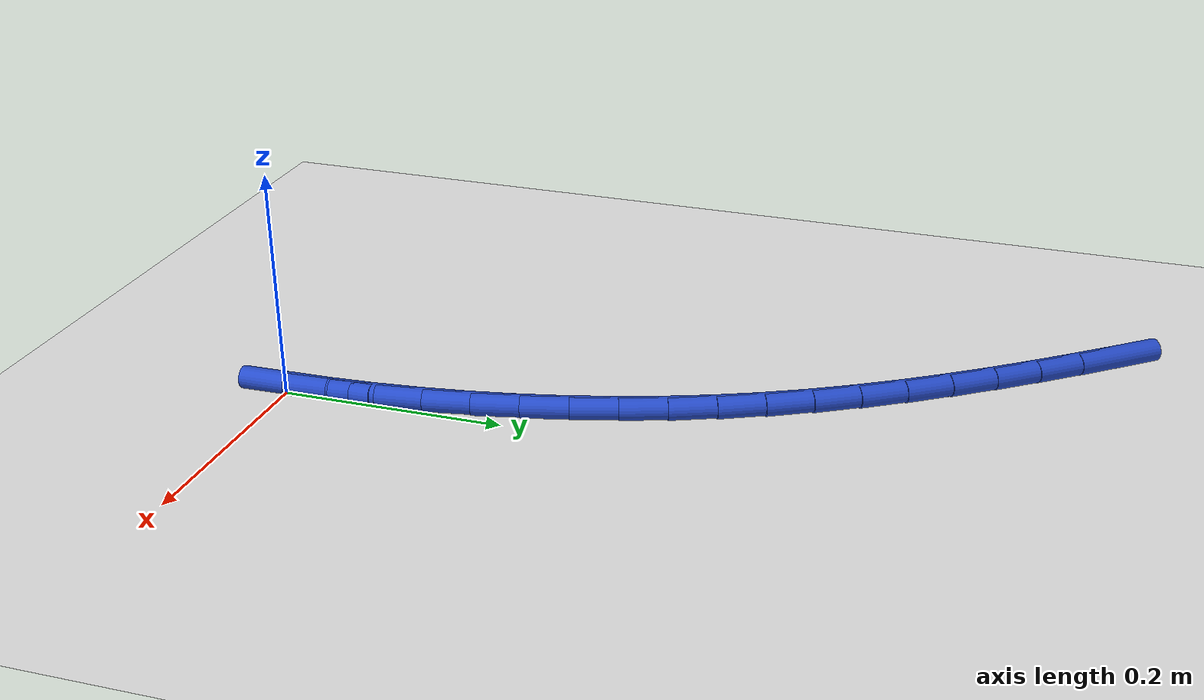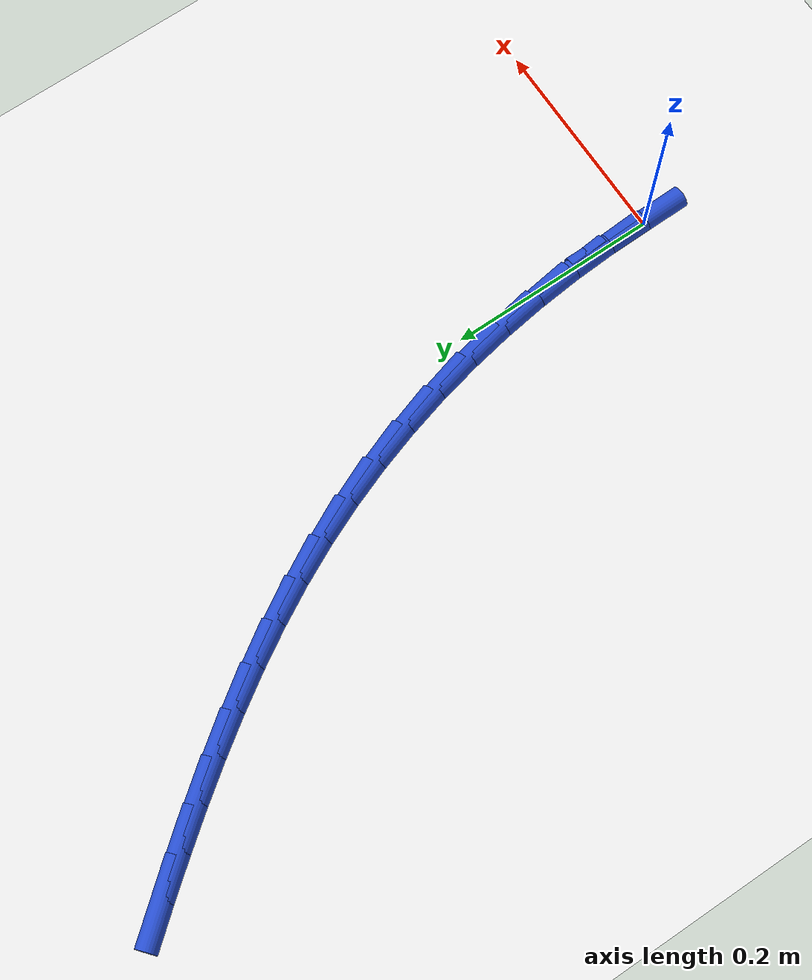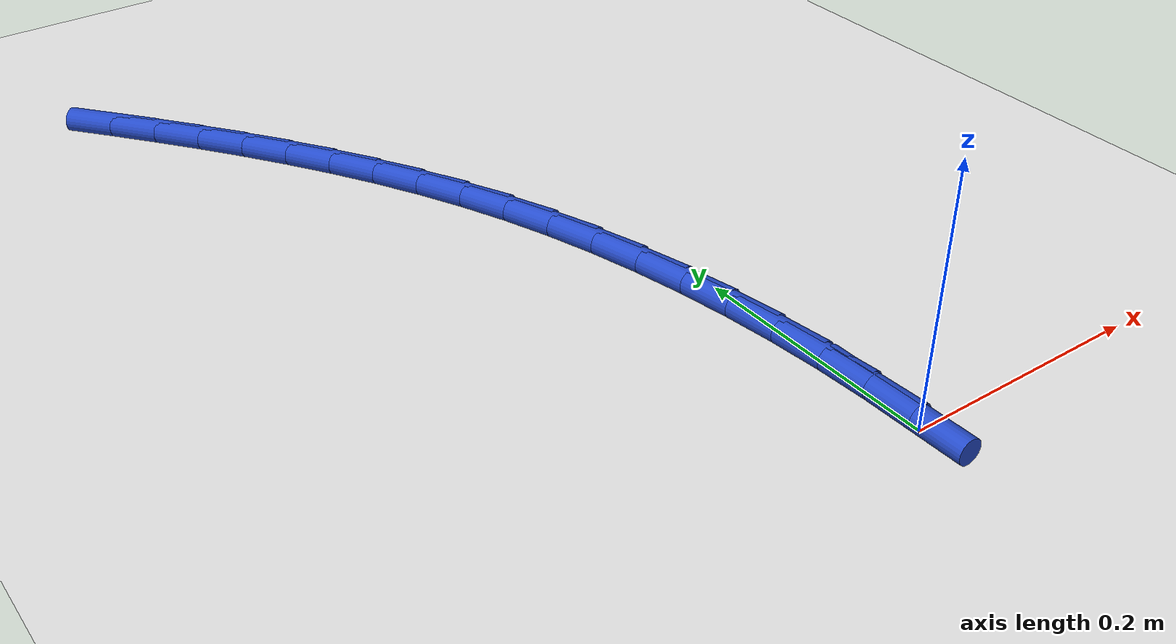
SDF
<sdf version="1.6">
 <world name="default">
  <model name="ground_plane">
   <static>1</static>
   <link name="link">
    <collision name="collision">
     <geometry><plane><normal>0 0 1</normal><size>100 100</size></plane></geometry>
     <surface><friction><ode><mu>100</mu><mu2>50</mu2></ode></friction></surface>
    </collision>
    <visual name="visual">
     <cast_shadows>0</cast_shadows>
     <geometry><plane><normal>0 0 1</normal><size>100 100</size></plane></geometry>
     <material>
      <script><uri>file://media/materials/scripts/gazebo.material</uri><name>Gazebo/WhiteGlow</name></script>
     </material>
    </visual>
   </link>
  </model>
  <model name="line">
   <link name="link_1">
    <pose>-0.0007282638147594852 0.041874004587753304 0.01 0 1.57 -1.5122994998238044</pose>
    <collision name="collision">
     <geometry><cylinder><radius>0.01</radius><length>0.08</length></cylinder></geometry>
    </collision>
    <visual name="visual">
     <material>
      <script><name>Gazebo/Blue</name><uri>file://media/materials/scripts/gazebo.material</uri></script>
     </material>
     <geometry><cylinder><radius>0.01</radius><length>0.08</length></cylinder></geometry>
    </visual>
   </link>
   <link name="link_2">
    <pose>-0.0031798134022813576 0.08373529475296942 0.01 0 1.57 -1.470878881483492</pose>
    <collision name="collision">
     <geometry><cylinder><radius>0.01</radius><length>0.08</length></cylinder></geometry>
    </collision>
    <visual name="visual">
     <material>
      <script><name>Gazebo/Blue</name><uri>file://media/materials/scripts/gazebo.material</uri></script>
     </material>
     <geometry><cylinder><radius>0.01</radius><length>0.08</length></cylinder></geometry>
    </visual>
   </link>
   <link name="link_3">
    <pose>-0.007363573650335044 0.1254680282970825 0.01 0 1.57 -1.4289467311778268</pose>
    <collision name="collision">
     <geometry><cylinder><radius>0.01</radius><length>0.08</length></cylinder></geometry>
    </collision>
    <visual name="visual">
     <material>
      <script><name>Gazebo/Blue</name><uri>file://media/materials/scripts/gazebo.material</uri></script>
     </material>
     <geometry><cylinder><radius>0.01</radius><length>0.08</length></cylinder></geometry>
    </visual>
   </link>
   <link name="link_4">
    <pose>-0.013288469446689996 0.16695636302152658 0.01 0 1.57 -1.3863072863154795</pose>
    <collision name="collision">
     <geometry><cylinder><radius>0.01</radius><length>0.08</length></cylinder></geometry>
    </collision>
    <visual name="visual">
     <material>
      <script><name>Gazebo/Blue</name><uri>file://media/materials/scripts/gazebo.material</uri></script>
     </material>
     <geometry><cylinder><radius>0.01</radius><length>0.08</length></cylinder></geometry>
    </visual>
   </link>
   <link name="link_5">
    <pose>-0.020963425679115664 0.2080844567277358 0.01 0 1.57 -1.3427668114638152</pose>
    <collision name="collision">
     <geometry><cylinder><radius>0.01</radius><length>0.08</length></cylinder></geometry>
    </collision>
    <visual name="visual">
     <material>
      <script><name>Gazebo/Blue</name><uri>file://media/materials/scripts/gazebo.material</uri></script>
     </material>
     <geometry><cylinder><radius>0.01</radius><length>0.08</length></cylinder></geometry>
    </visual>
   </link>
   <link name="link_6">
    <pose>-0.0303973672353815 0.24873646721714424 0.01 0 1.57 -1.2981342262421736</pose>
    <collision name="collision">
     <geometry><cylinder><radius>0.01</radius><length>0.08</length></cylinder></geometry>
    </collision>
    <visual name="visual">
     <material>
      <script><name>Gazebo/Blue</name><uri>file://media/materials/scripts/gazebo.material</uri></script>
     </material>
     <geometry><cylinder><radius>0.01</radius><length>0.08</length></cylinder></geometry>
    </visual>
   </link>
   <link name="link_7">
    <pose>-0.04159921900325694 0.28879655229118595 0.01 0 1.57 -1.2522224307529084</pose>
    <collision name="collision">
     <geometry><cylinder><radius>0.01</radius><length>0.08</length></cylinder></geometry>
    </collision>
    <visual name="visual">
     <material>
      <script><name>Gazebo/Blue</name><uri>file://media/materials/scripts/gazebo.material</uri></script>
     </material>
     <geometry><cylinder><radius>0.01</radius><length>0.08</length></cylinder></geometry>
    </visual>
   </link>
   <link name="link_8">
    <pose>-0.05457790587051146 0.328148869751295 0.01 0 1.57 -1.2048504978201051</pose>
    <collision name="collision">
     <geometry><cylinder><radius>0.01</radius><length>0.08</length></cylinder></geometry>
    </collision>
    <visual name="visual">
     <material>
      <script><name>Gazebo/Blue</name><uri>file://media/materials/scripts/gazebo.material</uri></script>
     </material>
     <geometry><cylinder><radius>0.01</radius><length>0.08</length></cylinder></geometry>
    </visual>
   </link>
   <link name="link_9">
    <pose>-0.06934235272491446 0.36667757739890555 0.01 0 1.57 -1.1560197943981028</pose>
    <collision name="collision">
     <geometry><cylinder><radius>0.01</radius><length>0.08</length></cylinder></geometry>
    </collision>
    <visual name="visual">
     <material>
      <script><name>Gazebo/Blue</name><uri>file://media/materials/scripts/gazebo.material</uri></script>
     </material>
     <geometry><cylinder><radius>0.01</radius><length>0.08</length></cylinder></geometry>
    </visual>
   </link>
   <link name="link_10">
    <pose>-0.08589665054340696 0.4042734765629268 0.01 0 1.57 -1.1085103560771954</pose>
    <collision name="collision">
     <geometry><cylinder><radius>0.01</radius><length>0.08</length></cylinder></geometry>
    </collision>
    <visual name="visual">
     <material>
      <script><name>Gazebo/Blue</name><uri>file://media/materials/scripts/gazebo.material</uri></script>
     </material>
     <geometry><cylinder><radius>0.01</radius><length>0.08</length></cylinder></geometry>
    </visual>
   </link>
   <link name="link_11">
    <pose>-0.10416567340350144 0.44093624100838236 0.01 0 1.57 -1.06487421130182</pose>
    <collision name="collision">
     <geometry><cylinder><radius>0.01</radius><length>0.08</length></cylinder></geometry>
    </collision>
    <visual name="visual">
     <material>
      <script><name>Gazebo/Blue</name><uri>file://media/materials/scripts/gazebo.material</uri></script>
     </material>
     <geometry><cylinder><radius>0.01</radius><length>0.08</length></cylinder></geometry>
    </visual>
   </link>
   <link name="link_12">
    <pose>-0.12400958770196195 0.4767544760652672 0.01 0 1.57 -1.025398350004674</pose>
    <collision name="collision">
     <geometry><cylinder><radius>0.01</radius><length>0.08</length></cylinder></geometry>
    </collision>
    <visual name="visual">
     <material>
      <script><name>Gazebo/Blue</name><uri>file://media/materials/scripts/gazebo.material</uri></script>
     </material>
     <geometry><cylinder><radius>0.01</radius><length>0.08</length></cylinder></geometry>
    </visual>
   </link>
   <link name="link_13">
    <pose>-0.14528666505102436 0.5118193911772061 0.01 0 1.57 -0.9902092059021794</pose>
    <collision name="collision">
     <geometry><cylinder><radius>0.01</radius><length>0.08</length></cylinder></geometry>
    </collision>
    <visual name="visual">
     <material>
      <script><name>Gazebo/Blue</name><uri>file://media/materials/scripts/gazebo.material</uri></script>
     </material>
     <geometry><cylinder><radius>0.01</radius><length>0.08</length></cylinder></geometry>
    </visual>
   </link>
   <link name="link_14">
    <pose>-0.16785517706292458 0.5462221957878234 0.01 0 1.57 -0.9593588319528648</pose>
    <collision name="collision">
     <geometry><cylinder><radius>0.01</radius><length>0.08</length></cylinder></geometry>
    </collision>
    <visual name="visual">
     <material>
      <script><name>Gazebo/Blue</name><uri>file://media/materials/scripts/gazebo.material</uri></script>
     </material>
     <geometry><cylinder><radius>0.01</radius><length>0.08</length></cylinder></geometry>
    </visual>
   </link>
   <link name="link_15">
    <pose>-0.1915733953498984 0.5800540993407439 0.01 0 1.57 -0.9328439126575583</pose>
    <collision name="collision">
     <geometry><cylinder><radius>0.01</radius><length>0.08</length></cylinder></geometry>
    </collision>
    <visual name="visual">
     <material>
      <script><name>Gazebo/Blue</name><uri>file://media/materials/scripts/gazebo.material</uri></script>
     </material>
     <geometry><cylinder><radius>0.01</radius><length>0.08</length></cylinder></geometry>
    </visual>
   </link>
   <link name="link_16">
    <pose>-0.21629959152418177 0.6134063112795923 0.01 0 1.57 -0.9106234379059012</pose>
    <collision name="collision">
     <geometry><cylinder><radius>0.01</radius><length>0.08</length></cylinder></geometry>
    </collision>
    <visual name="visual">
     <material>
      <script><name>Gazebo/Blue</name><uri>file://media/materials/scripts/gazebo.material</uri></script>
     </material>
     <geometry><cylinder><radius>0.01</radius><length>0.08</length></cylinder></geometry>
    </visual>
   </link>
   <link name="link_17">
    <pose>-0.24189203719801064 0.6463700410479936 0.01 0 1.57 -0.8926339338847639</pose>
    <collision name="collision">
     <geometry><cylinder><radius>0.01</radius><length>0.08</length></cylinder></geometry>
    </collision>
    <visual name="visual">
     <material>
      <script><name>Gazebo/Blue</name><uri>file://media/materials/scripts/gazebo.material</uri></script>
     </material>
     <geometry><cylinder><radius>0.01</radius><length>0.08</length></cylinder></geometry>
    </visual>
   </link>
   <link name="link_18">
    <pose>-0.2682090039836207 0.6790364980895718 0.01 0 1.57 -0.8788017980443213</pose>
    <collision name="collision">
     <geometry><cylinder><radius>0.01</radius><length>0.08</length></cylinder></geometry>
    </collision>
    <visual name="visual">
     <material>
      <script><name>Gazebo/Blue</name><uri>file://media/materials/scripts/gazebo.material</uri></script>
     </material>
     <geometry><cylinder><radius>0.01</radius><length>0.08</length></cylinder></geometry>
    </visual>
   </link>
   <link name="link_160">
    <pose>2.6020852139652106e-17 5.551115123125783e-17 0.01 0 1.57 -1.5534117286570377</pose>
    <collision name="collision">
     <geometry><cylinder><radius>0.01</radius><length>0.08</length></cylinder></geometry>
    </collision>
    <visual name="visual">
     <material>
      <script><name>Gazebo/Blue</name><uri>file://media/materials/scripts/gazebo.material</uri></script>
     </material>
     <geometry><cylinder><radius>0.01</radius><length>0.08</length></cylinder></geometry>
    </visual>
   </link>
   <link name="link_161">
    <pose>-0.0007282263762478699 0.04188494933493012 0.01 0 1.57 -1.5534117286570377</pose>
    <collision name="collision">
     <geometry><cylinder><radius>0.01</radius><length>0.08</length></cylinder></geometry>
    </collision>
    <visual name="visual">
     <material>
      <script><name>Gazebo/Blue</name><uri>file://media/materials/scripts/gazebo.material</uri></script>
     </material>
     <geometry><cylinder><radius>0.01</radius><length>0.08</length></cylinder></geometry>
    </visual>
   </link>
  </model>
 </world>
</sdf>
